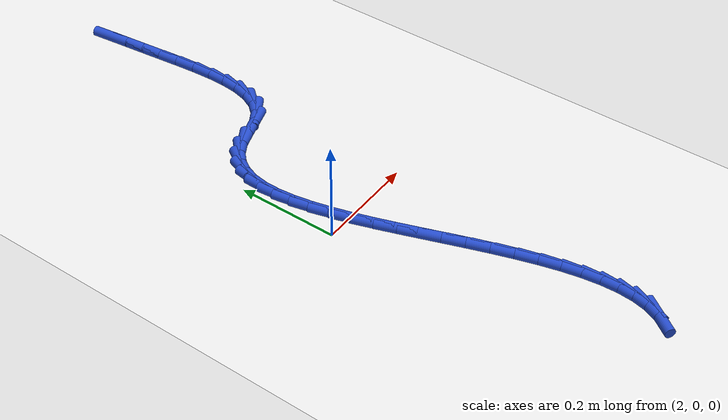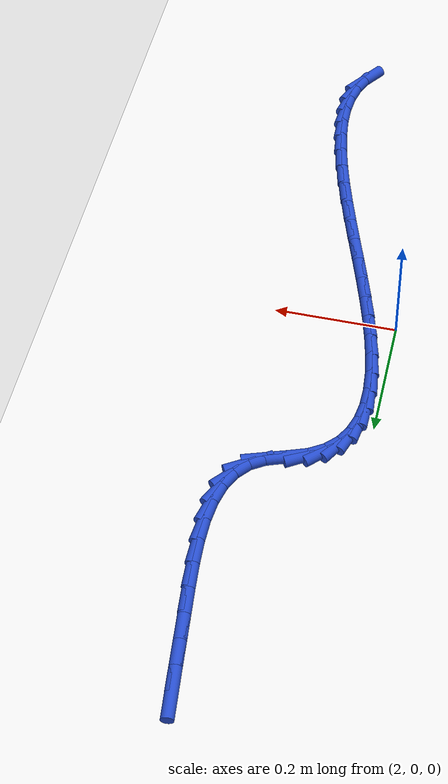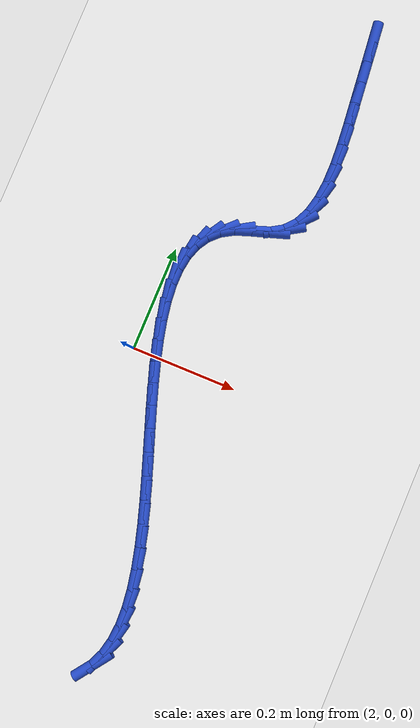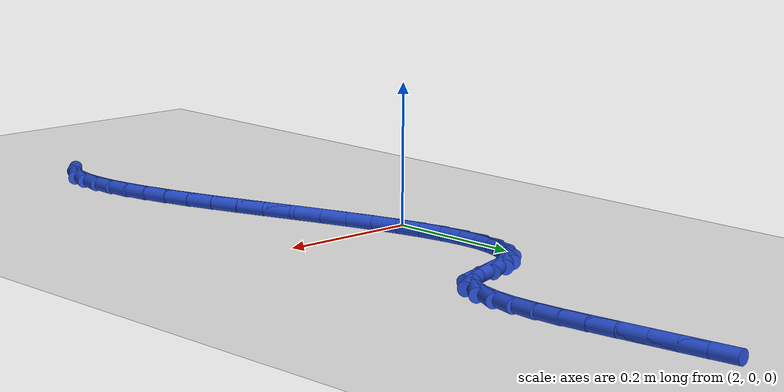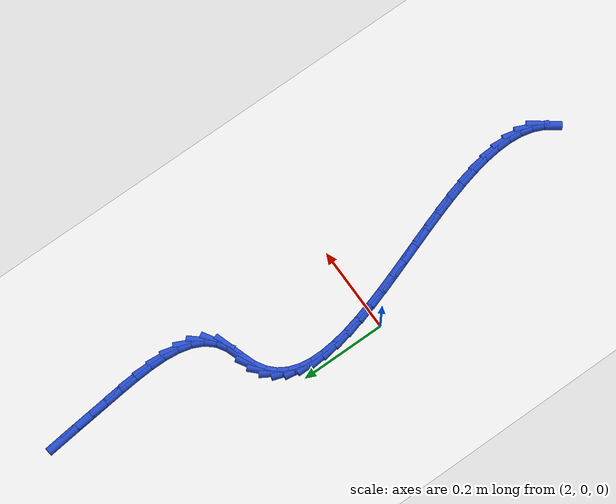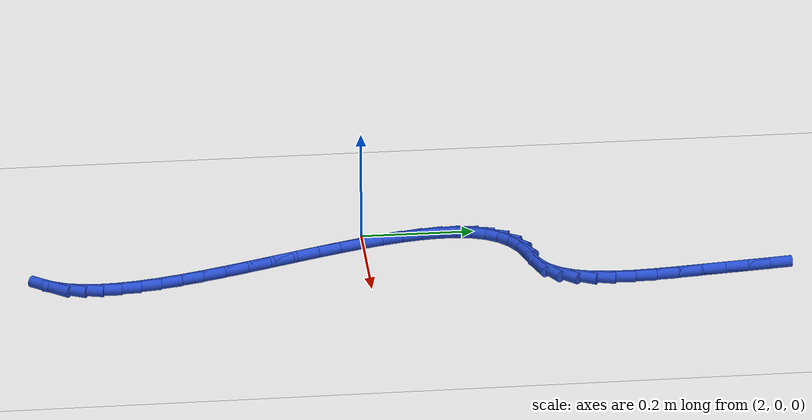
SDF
<sdf version="1.6">
 <world name="default">
  <model name="ground_plane">
   <static>1</static>
   <link name="link">
    <collision name="collision">
     <geometry><plane><normal>0 0 1</normal><size>100 100</size></plane></geometry>
     <surface><friction><ode><mu>100</mu><mu2>50</mu2></ode></friction></surface>
    </collision>
    <visual name="visual">
     <cast_shadows>0</cast_shadows>
     <geometry><plane><normal>0 0 1</normal><size>100 100</size></plane></geometry>
     <material>
      <script><uri>file://media/materials/scripts/gazebo.material</uri><name>Gazebo/WhiteGlow</name></script>
     </material>
    </visual>
   </link>
  </model>
  <model name="line">
   <link name="link_102">
    <pose>2.1914282963989833 0.7005481503759328 0.01 0 1.57 -1.4604354869446552</pose>
    <collision name="collision">
     <geometry><cylinder><radius>0.01</radius><length>0.08</length></cylinder></geometry>
    </collision>
    <visual name="visual">
     <material>
      <script><name>Gazebo/Blue</name><uri>file://media/materials/scripts/gazebo.material</uri></script>
     </material>
     <geometry><cylinder><radius>0.01</radius><length>0.08</length></cylinder></geometry>
    </visual>
   </link>
   <link name="link_103">
    <pose>2.1958969525432885 0.6602213516579291 0.01 0 1.57 -1.4662972485006511</pose>
    <collision name="collision">
     <geometry><cylinder><radius>0.01</radius><length>0.08</length></cylinder></geometry>
    </collision>
    <visual name="visual">
     <material>
      <script><name>Gazebo/Blue</name><uri>file://media/materials/scripts/gazebo.material</uri></script>
     </material>
     <geometry><cylinder><radius>0.01</radius><length>0.08</length></cylinder></geometry>
    </visual>
   </link>
   <link name="link_104">
    <pose>2.200195782452603 0.6192337108803814 0.01 0 1.57 -1.4656386658702587</pose>
    <collision name="collision">
     <geometry><cylinder><radius>0.01</radius><length>0.08</length></cylinder></geometry>
    </collision>
    <visual name="visual">
     <material>
      <script><name>Gazebo/Blue</name><uri>file://media/materials/scripts/gazebo.material</uri></script>
     </material>
     <geometry><cylinder><radius>0.01</radius><length>0.08</length></cylinder></geometry>
    </visual>
   </link>
   <link name="link_105">
    <pose>2.204555852004964 0.5779244401808115 0.01 0 1.57 -1.4645022893726114</pose>
    <collision name="collision">
     <geometry><cylinder><radius>0.01</radius><length>0.08</length></cylinder></geometry>
    </collision>
    <visual name="visual">
     <material>
      <script><name>Gazebo/Blue</name><uri>file://media/materials/scripts/gazebo.material</uri></script>
     </material>
     <geometry><cylinder><radius>0.01</radius><length>0.08</length></cylinder></geometry>
    </visual>
   </link>
   <link name="link_106">
    <pose>2.2089521859095114 0.5367202079069163 0.01 0 1.57 -1.4794551336355375</pose>
    <collision name="collision">
     <geometry><cylinder><radius>0.01</radius><length>0.08</length></cylinder></geometry>
    </collision>
    <visual name="visual">
     <material>
      <script><name>Gazebo/Blue</name><uri>file://media/materials/scripts/gazebo.material</uri></script>
     </material>
     <geometry><cylinder><radius>0.01</radius><length>0.08</length></cylinder></geometry>
    </visual>
   </link>
   <link name="link_107">
    <pose>2.212655597049059 0.4962882206673187 0.01 0 1.57 -1.5153666666746097</pose>
    <collision name="collision">
     <geometry><cylinder><radius>0.01</radius><length>0.08</length></cylinder></geometry>
    </collision>
    <visual name="visual">
     <material>
      <script><name>Gazebo/Blue</name><uri>file://media/materials/scripts/gazebo.material</uri></script>
     </material>
     <geometry><cylinder><radius>0.01</radius><length>0.08</length></cylinder></geometry>
    </visual>
   </link>
   <link name="link_108">
    <pose>2.2148168816818212 0.45733667925603405 0.01 0 1.57 1.5645388594606395</pose>
    <collision name="collision">
     <geometry><cylinder><radius>0.01</radius><length>0.08</length></cylinder></geometry>
    </collision>
    <visual name="visual">
     <material>
      <script><name>Gazebo/Blue</name><uri>file://media/materials/scripts/gazebo.material</uri></script>
     </material>
     <geometry><cylinder><radius>0.01</radius><length>0.08</length></cylinder></geometry>
    </visual>
   </link>
   <link name="link_109">
    <pose>2.2145868360660113 0.42057378446707844 0.01 0 1.57 1.468673214252321</pose>
    <collision name="collision">
     <geometry><cylinder><radius>0.01</radius><length>0.08</length></cylinder></geometry>
    </collision>
    <visual name="visual">
     <material>
      <script><name>Gazebo/Blue</name><uri>file://media/materials/scripts/gazebo.material</uri></script>
     </material>
     <geometry><cylinder><radius>0.01</radius><length>0.08</length></cylinder></geometry>
    </visual>
   </link>
   <link name="link_110">
    <pose>2.2111162564598428 0.38670773709446665 0.01 0 1.57 1.3259710784970513</pose>
    <collision name="collision">
     <geometry><cylinder><radius>0.01</radius><length>0.08</length></cylinder></geometry>
    </collision>
    <visual name="visual">
     <material>
      <script><name>Gazebo/Blue</name><uri>file://media/materials/scripts/gazebo.material</uri></script>
     </material>
     <geometry><cylinder><radius>0.01</radius><length>0.08</length></cylinder></geometry>
    </visual>
   </link>
   <link name="link_111">
    <pose>2.2035559391215287 0.3564467379322141 0.01 0 1.57 1.1218884854643745</pose>
    <collision name="collision">
     <geometry><cylinder><radius>0.01</radius><length>0.08</length></cylinder></geometry>
    </collision>
    <visual name="visual">
     <material>
      <script><name>Gazebo/Blue</name><uri>file://media/materials/scripts/gazebo.material</uri></script>
     </material>
     <geometry><cylinder><radius>0.01</radius><length>0.08</length></cylinder></geometry>
    </visual>
   </link>
   <link name="link_112">
    <pose>2.1910566803092815 0.33049898777433556 0.01 0 1.57 0.8525921103714413</pose>
    <collision name="collision">
     <geometry><cylinder><radius>0.01</radius><length>0.08</length></cylinder></geometry>
    </collision>
    <visual name="visual">
     <material>
      <script><name>Gazebo/Blue</name><uri>file://media/materials/scripts/gazebo.material</uri></script>
     </material>
     <geometry><cylinder><radius>0.01</radius><length>0.08</length></cylinder></geometry>
    </visual>
   </link>
   <link name="link_113">
    <pose>2.172769276281317 0.3095726874148474 0.01 0 1.57 0.5475226862464199</pose>
    <collision name="collision">
     <geometry><cylinder><radius>0.01</radius><length>0.08</length></cylinder></geometry>
    </collision>
    <visual name="visual">
     <material>
      <script><name>Gazebo/Blue</name><uri>file://media/materials/scripts/gazebo.material</uri></script>
     </material>
     <geometry><cylinder><radius>0.01</radius><length>0.08</length></cylinder></geometry>
    </visual>
   </link>
   <link name="link_114">
    <pose>2.1478445362618412 0.2943760274512693 0.01 0 1.57 0.31658738572660966</pose>
    <collision name="collision">
     <geometry><cylinder><radius>0.01</radius><length>0.08</length></cylinder></geometry>
    </collision>
    <visual name="visual">
     <material>
      <script><name>Gazebo/Blue</name><uri>file://media/materials/scripts/gazebo.material</uri></script>
     </material>
     <geometry><cylinder><radius>0.01</radius><length>0.08</length></cylinder></geometry>
    </visual>
   </link>
   <link name="link_115">
    <pose>2.1171022913420856 0.28430467480249805 0.01 0 1.57 0.3381384937527425</pose>
    <collision name="collision">
     <geometry><cylinder><radius>0.01</radius><length>0.08</length></cylinder></geometry>
    </collision>
    <visual name="visual">
     <material>
      <script><name>Gazebo/Blue</name><uri>file://media/materials/scripts/gazebo.material</uri></script>
     </material>
     <geometry><cylinder><radius>0.01</radius><length>0.08</length></cylinder></geometry>
    </visual>
   </link>
   <link name="link_116">
    <pose>2.087527467122147 0.27390487070437775 0.01 0 1.57 0.5402866216183297</pose>
    <collision name="collision">
     <geometry><cylinder><radius>0.01</radius><length>0.08</length></cylinder></geometry>
    </collision>
    <visual name="visual">
     <material>
      <script><name>Gazebo/Blue</name><uri>file://media/materials/scripts/gazebo.material</uri></script>
     </material>
     <geometry><cylinder><radius>0.01</radius><length>0.08</length></cylinder></geometry>
    </visual>
   </link>
   <link name="link_117">
    <pose>2.0636730244902446 0.2595965156364114 0.01 0 1.57 0.7812561824401395</pose>
    <collision name="collision">
     <geometry><cylinder><radius>0.01</radius><length>0.08</length></cylinder></geometry>
    </collision>
    <visual name="visual">
     <material>
      <script><name>Gazebo/Blue</name><uri>file://media/materials/scripts/gazebo.material</uri></script>
     </material>
     <geometry><cylinder><radius>0.01</radius><length>0.08</length></cylinder></geometry>
    </visual>
   </link>
   <link name="link_118">
    <pose>2.0453821315810665 0.2414565196382757 0.01 0 1.57 1.0250358254132539</pose>
    <collision name="collision">
     <geometry><cylinder><radius>0.01</radius><length>0.08</length></cylinder></geometry>
    </collision>
    <visual name="visual">
     <material>
      <script><name>Gazebo/Blue</name><uri>file://media/materials/scripts/gazebo.material</uri></script>
     </material>
     <geometry><cylinder><radius>0.01</radius><length>0.08</length></cylinder></geometry>
    </visual>
   </link>
   <link name="link_119">
    <pose>2.0322178336594137 0.21977929956296352 0.01 0 1.57 1.2429913346298143</pose>
    <collision name="collision">
     <geometry><cylinder><radius>0.01</radius><length>0.08</length></cylinder></geometry>
    </collision>
    <visual name="visual">
     <material>
      <script><name>Gazebo/Blue</name><uri>file://media/materials/scripts/gazebo.material</uri></script>
     </material>
     <geometry><cylinder><radius>0.01</radius><length>0.08</length></cylinder></geometry>
    </visual>
   </link>
   <link name="link_120">
    <pose>2.0237431759900883 0.19485927226346927 0.01 0 1.57 1.4204429769295719</pose>
    <collision name="collision">
     <geometry><cylinder><radius>0.01</radius><length>0.08</length></cylinder></geometry>
    </collision>
    <visual name="visual">
     <material>
      <script><name>Gazebo/Blue</name><uri>file://media/materials/scripts/gazebo.material</uri></script>
     </material>
     <geometry><cylinder><radius>0.01</radius><length>0.08</length></cylinder></geometry>
    </visual>
   </link>
   <link name="link_121">
    <pose>2.0195212038378902 0.16699085459278615 0.01 0 1.57 1.5574874945247548</pose>
    <collision name="collision">
     <geometry><cylinder><radius>0.01</radius><length>0.08</length></cylinder></geometry>
    </collision>
    <visual name="visual">
     <material>
      <script><name>Gazebo/Blue</name><uri>file://media/materials/scripts/gazebo.material</uri></script>
     </material>
     <geometry><cylinder><radius>0.01</radius><length>0.08</length></cylinder></geometry>
    </visual>
   </link>
   <link name="link_122">
    <pose>2.019114962467621 0.13646846340390784 0.01 0 1.57 -1.4806411819586218</pose>
    <collision name="collision">
     <geometry><cylinder><radius>0.01</radius><length>0.08</length></cylinder></geometry>
    </collision>
    <visual name="visual">
     <material>
      <script><name>Gazebo/Blue</name><uri>file://media/materials/scripts/gazebo.material</uri></script>
     </material>
     <geometry><cylinder><radius>0.01</radius><length>0.08</length></cylinder></geometry>
    </visual>
   </link>
   <link name="link_123">
    <pose>2.0220874971440823 0.10358651554982792 0.01 0 1.57 -1.4031473945831985</pose>
    <collision name="collision">
     <geometry><cylinder><radius>0.01</radius><length>0.08</length></cylinder></geometry>
    </collision>
    <visual name="visual">
     <material>
      <script><name>Gazebo/Blue</name><uri>file://media/materials/scripts/gazebo.material</uri></script>
     </material>
     <geometry><cylinder><radius>0.01</radius><length>0.08</length></cylinder></geometry>
    </visual>
   </link>
   <link name="link_124">
    <pose>2.0280018531320745 0.06863942788353992 0.01 0 1.57 -1.345397306020634</pose>
    <collision name="collision">
     <geometry><cylinder><radius>0.01</radius><length>0.08</length></cylinder></geometry>
    </collision>
    <visual name="visual">
     <material>
      <script><name>Gazebo/Blue</name><uri>file://media/materials/scripts/gazebo.material</uri></script>
     </material>
     <geometry><cylinder><radius>0.01</radius><length>0.08</length></cylinder></geometry>
    </visual>
   </link>
   <link name="link_125">
    <pose>2.036421075696399 0.03192161725803649 0.01 0 1.57 -1.3028256478962026</pose>
    <collision name="collision">
     <geometry><cylinder><radius>0.01</radius><length>0.08</length></cylinder></geometry>
    </collision>
    <visual name="visual">
     <material>
      <script><name>Gazebo/Blue</name><uri>file://media/materials/scripts/gazebo.material</uri></script>
     </material>
     <geometry><cylinder><radius>0.01</radius><length>0.08</length></cylinder></geometry>
    </visual>
   </link>
   <link name="link_126">
    <pose>2.046908210101858 -0.006272499473686941 0.01 0 1.57 -1.2722417779562525</pose>
    <collision name="collision">
     <geometry><cylinder><radius>0.01</radius><length>0.08</length></cylinder></geometry>
    </collision>
    <visual name="visual">
     <material>
      <script><name>Gazebo/Blue</name><uri>file://media/materials/scripts/gazebo.material</uri></script>
     </material>
     <geometry><cylinder><radius>0.01</radius><length>0.08</length></cylinder></geometry>
    </visual>
   </link>
   <link name="link_127">
    <pose>2.059026301613251 -0.04564850545863758 0.01 0 1.57 -1.251485667394038</pose>
    <collision name="collision">
     <geometry><cylinder><radius>0.01</radius><length>0.08</length></cylinder></geometry>
    </collision>
    <visual name="visual">
     <material>
      <script><name>Gazebo/Blue</name><uri>file://media/materials/scripts/gazebo.material</uri></script>
     </material>
     <geometry><cylinder><radius>0.01</radius><length>0.08</length></cylinder></geometry>
    </visual>
   </link>
   <link name="link_128">
    <pose>2.07233839549538 -0.08591198384382193 0.01 0 1.57 -1.23915950898346</pose>
    <collision name="collision">
     <geometry><cylinder><radius>0.01</radius><length>0.08</length></cylinder></geometry>
    </collision>
    <visual name="visual">
     <material>
      <script><name>Gazebo/Blue</name><uri>file://media/materials/scripts/gazebo.material</uri></script>
     </material>
     <geometry><cylinder><radius>0.01</radius><length>0.08</length></cylinder></geometry>
    </visual>
   </link>
   <link name="link_129">
    <pose>2.0864075370130455 -0.12676851777624643 0.01 0 1.57 -1.234447888493615</pose>
    <collision name="collision">
     <geometry><cylinder><radius>0.01</radius><length>0.08</length></cylinder></geometry>
    </collision>
    <visual name="visual">
     <material>
      <script><name>Gazebo/Blue</name><uri>file://media/materials/scripts/gazebo.material</uri></script>
     </material>
     <geometry><cylinder><radius>0.01</radius><length>0.08</length></cylinder></geometry>
    </visual>
   </link>
   <link name="link_130">
    <pose>2.1007967714310496 -0.1679236904029174 0.01 0 1.57 -1.2370121130701386</pose>
    <collision name="collision">
     <geometry><cylinder><radius>0.01</radius><length>0.08</length></cylinder></geometry>
    </collision>
    <visual name="visual">
     <material>
      <script><name>Gazebo/Blue</name><uri>file://media/materials/scripts/gazebo.material</uri></script>
     </material>
     <geometry><cylinder><radius>0.01</radius><length>0.08</length></cylinder></geometry>
    </visual>
   </link>
   <link name="link_131">
    <pose>2.115069144014192 -0.20908308487084135 0.01 0 1.57 -1.2469444282892148</pose>
    <collision name="collision">
     <geometry><cylinder><radius>0.01</radius><length>0.08</length></cylinder></geometry>
    </collision>
    <visual name="visual">
     <material>
      <script><name>Gazebo/Blue</name><uri>file://media/materials/scripts/gazebo.material</uri></script>
     </material>
     <geometry><cylinder><radius>0.01</radius><length>0.08</length></cylinder></geometry>
    </visual>
   </link>
   <link name="link_132">
    <pose>2.1287877000272757 -0.2499522843270257 0.01 0 1.57 -1.2647744432307402</pose>
    <collision name="collision">
     <geometry><cylinder><radius>0.01</radius><length>0.08</length></cylinder></geometry>
    </collision>
    <visual name="visual">
     <material>
      <script><name>Gazebo/Blue</name><uri>file://media/materials/scripts/gazebo.material</uri></script>
     </material>
     <geometry><cylinder><radius>0.01</radius><length>0.08</length></cylinder></geometry>
    </visual>
   </link>
   <link name="link_133">
    <pose>2.1415154847351 -0.29023687191847464 0.01 0 1.57 -1.2915273145719675</pose>
    <collision name="collision">
     <geometry><cylinder><radius>0.01</radius><length>0.08</length></cylinder></geometry>
    </collision>
    <visual name="visual">
     <material>
      <script><name>Gazebo/Blue</name><uri>file://media/materials/scripts/gazebo.material</uri></script>
     </material>
     <geometry><cylinder><radius>0.01</radius><length>0.08</length></cylinder></geometry>
    </visual>
   </link>
   <link name="link_134">
    <pose>2.152815543402468 -0.3296424307921959 0.01 0 1.57 -1.3288392740829376</pose>
    <collision name="collision">
     <geometry><cylinder><radius>0.01</radius><length>0.08</length></cylinder></geometry>
    </collision>
    <visual name="visual">
     <material>
      <script><name>Gazebo/Blue</name><uri>file://media/materials/scripts/gazebo.material</uri></script>
     </material>
     <geometry><cylinder><radius>0.01</radius><length>0.08</length></cylinder></geometry>
    </visual>
   </link>
   <link name="link_135">
    <pose>2.1622509212941794 -0.3678745440951957 0.01 0 1.57 -1.3791378619351955</pose>
    <collision name="collision">
     <geometry><cylinder><radius>0.01</radius><length>0.08</length></cylinder></geometry>
    </collision>
    <visual name="visual">
     <material>
      <script><name>Gazebo/Blue</name><uri>file://media/materials/scripts/gazebo.material</uri></script>
     </material>
     <geometry><cylinder><radius>0.01</radius><length>0.08</length></cylinder></geometry>
    </visual>
   </link>
   <link name="link_136">
    <pose>2.1693846636750354 -0.4046387949744804 0.01 0 1.57 -1.445881418949369</pose>
    <collision name="collision">
     <geometry><cylinder><radius>0.01</radius><length>0.08</length></cylinder></geometry>
    </collision>
    <visual name="visual">
     <material>
      <script><name>Gazebo/Blue</name><uri>file://media/materials/scripts/gazebo.material</uri></script>
     </material>
     <geometry><cylinder><radius>0.01</radius><length>0.08</length></cylinder></geometry>
    </visual>
   </link>
   <link name="link_137">
    <pose>2.173779815809837 -0.43964076657705653 0.01 0 1.57 -1.533794041365987</pose>
    <collision name="collision">
     <geometry><cylinder><radius>0.01</radius><length>0.08</length></cylinder></geometry>
    </collision>
    <visual name="visual">
     <material>
      <script><name>Gazebo/Blue</name><uri>file://media/materials/scripts/gazebo.material</uri></script>
     </material>
     <geometry><cylinder><radius>0.01</radius><length>0.08</length></cylinder></geometry>
    </visual>
   </link>
   <link name="link_138">
    <pose>2.1749994229633858 -0.4725860420499306 0.01 0 1.57 1.4927412095202375</pose>
    <collision name="collision">
     <geometry><cylinder><radius>0.01</radius><length>0.08</length></cylinder></geometry>
    </collision>
    <visual name="visual">
     <material>
      <script><name>Gazebo/Blue</name><uri>file://media/materials/scripts/gazebo.material</uri></script>
     </material>
     <geometry><cylinder><radius>0.01</radius><length>0.08</length></cylinder></geometry>
    </visual>
   </link>
   <link name="link_139">
    <pose>2.1726065304004836 -0.5031802045401088 0.01 0 1.57 1.3442467521309072</pose>
    <collision name="collision">
     <geometry><cylinder><radius>0.01</radius><length>0.08</length></cylinder></geometry>
    </collision>
    <visual name="visual">
     <material>
      <script><name>Gazebo/Blue</name><uri>file://media/materials/scripts/gazebo.material</uri></script>
     </material>
     <geometry><cylinder><radius>0.01</radius><length>0.08</length></cylinder></geometry>
    </visual>
   </link>
   <link name="link_140">
    <pose>2.16616418338593 -0.5311288371945985 0.01 0 1.57 1.1588069627678295</pose>
    <collision name="collision">
     <geometry><cylinder><radius>0.01</radius><length>0.08</length></cylinder></geometry>
    </collision>
    <visual name="visual">
     <material>
      <script><name>Gazebo/Blue</name><uri>file://media/materials/scripts/gazebo.material</uri></script>
     </material>
     <geometry><cylinder><radius>0.01</radius><length>0.08</length></cylinder></geometry>
    </visual>
   </link>
   <link name="link_141">
    <pose>2.155235427184527 -0.5561375231604043 0.01 0 1.57 0.9415121203309477</pose>
    <collision name="collision">
     <geometry><cylinder><radius>0.01</radius><length>0.08</length></cylinder></geometry>
    </collision>
    <visual name="visual">
     <material>
      <script><name>Gazebo/Blue</name><uri>file://media/materials/scripts/gazebo.material</uri></script>
     </material>
     <geometry><cylinder><radius>0.01</radius><length>0.08</length></cylinder></geometry>
    </visual>
   </link>
  </model>
 </world>
</sdf>
